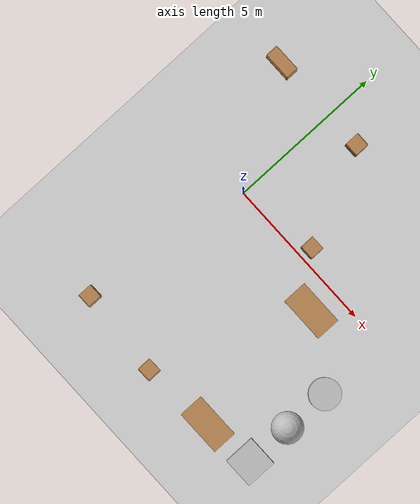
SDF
<sdf version="1.7">
 <world name="default">
  <model name="ground_plane">
   <static>1</static>
   <link name="link">
    <collision name="collision">
     <geometry><plane><normal>0 0 1</normal><size>100 100</size></plane></geometry>
     <surface>
      <contact><collide_bitmask>65535</collide_bitmask></contact>
      <friction><ode><mu>100</mu><mu2>50</mu2></ode></friction>
     </surface>
    </collision>
    <visual name="visual">
     <cast_shadows>0</cast_shadows>
     <geometry><plane><normal>0 0 1</normal><size>100 100</size></plane></geometry>
     <material>
      <script><uri>file://media/materials/scripts/gazebo.material</uri><name>Gazebo/Grey</name></script>
     </material>
    </visual>
   </link>
  </model>
  <model name="table">
   <static>1</static>
   <link name="link">
    <collision name="surface">
     <pose>0 0 1 0 -0 0</pose>
     <geometry><box><size>1.5 0.8 0.03</size></box></geometry>
     <surface><friction><ode><mu>0.6</mu><mu2>0.6</mu2></ode></friction></surface>
    </collision>
    <visual name="visual1">
     <pose>0 0 1 0 -0 0</pose>
     <geometry><box><size>1.5 0.8 0.03</size></box></geometry>
     <material>
      <script><uri>file://media/materials/scripts/gazebo.material</uri><name>Gazebo/Wood</name></script>
     </material>
    </visual>
    <collision name="front_left_leg">
     <pose>0.68 0.38 0.5 0 -0 0</pose>
     <geometry><cylinder><radius>0.02</radius><length>1</length></cylinder></geometry>
    </collision>
    <visual name="front_left_leg">
     <pose>0.68 0.38 0.5 0 -0 0</pose>
     <geometry><cylinder><radius>0.02</radius><length>1</length></cylinder></geometry>
     <material>
      <script><uri>file://media/materials/scripts/gazebo.material</uri><name>Gazebo/Grey</name></script>
     </material>
    </visual>
    <collision name="front_right_leg">
     <pose>0.68 -0.38 0.5 0 -0 0</pose>
     <geometry><cylinder><radius>0.02</radius><length>1</length></cylinder></geometry>
    </collision>
    <visual name="front_right_leg">
     <pose>0.68 -0.38 0.5 0 -0 0</pose>
     <geometry><cylinder><radius>0.02</radius><length>1</length></cylinder></geometry>
     <material>
      <script><uri>file://media/materials/scripts/gazebo.material</uri><name>Gazebo/Grey</name></script>
     </material>
    </visual>
    <collision name="back_right_leg">
     <pose>-0.68 -0.38 0.5 0 -0 0</pose>
     <geometry><cylinder><radius>0.02</radius><length>1</length></cylinder></geometry>
    </collision>
    <visual name="back_right_leg">
     <pose>-0.68 -0.38 0.5 0 -0 0</pose>
     <geometry><cylinder><radius>0.02</radius><length>1</length></cylinder></geometry>
     <material>
      <script><uri>file://media/materials/scripts/gazebo.material</uri><name>Gazebo/Grey</name></script>
     </material>
    </visual>
    <collision name="back_left_leg">
     <pose>-0.68 0.38 0.5 0 -0 0</pose>
     <geometry><cylinder><radius>0.02</radius><length>1</length></cylinder></geometry>
    </collision>
    <visual name="back_left_leg">
     <pose>-0.68 0.38 0.5 0 -0 0</pose>
     <geometry><cylinder><radius>0.02</radius><length>1</length></cylinder></geometry>
     <material>
      <script><uri>file://media/materials/scripts/gazebo.material</uri><name>Gazebo/Grey</name></script>
     </material>
    </visual>
   </link>
   <pose>3.97524 -0.880736 0 0 -0 0</pose>
  </model>
  <model name="bookshelf">
   <static>1</static>
   <link name="link">
    <inertial><mass>1</mass></inertial>
    <collision name="back">
     <pose>0 0.005 0.6 0 -0 0</pose>
     <geometry><box><size>0.9 0.01 1.2</size></box></geometry>
    </collision>
    <visual name="visual1">
     <pose>0 0.005 0.6 0 -0 0</pose>
     <geometry><box><size>0.9 0.01 1.2</size></box></geometry>
     <material>
      <script><uri>file://media/materials/scripts/gazebo.material</uri><name>Gazebo/Wood</name></script>
     </material>
    </visual>
    <collision name="left_side">
     <pose>0.45 -0.195 0.6 0 -0 0</pose>
     <geometry><box><size>0.02 0.4 1.2</size></box></geometry>
    </collision>
    <visual name="visual2">
     <pose>0.45 -0.195 0.6 0 -0 0</pose>
     <geometry><box><size>0.02 0.4 1.2</size></box></geometry>
     <material>
      <script><uri>file://media/materials/scripts/gazebo.material</uri><name>Gazebo/Wood</name></script>
     </material>
    </visual>
    <collision name="right_side">
     <pose>-0.45 -0.195 0.6 0 -0 0</pose>
     <geometry><box><size>0.02 0.4 1.2</size></box></geometry>
    </collision>
    <visual name="visual3">
     <pose>-0.45 -0.195 0.6 0 -0 0</pose>
     <geometry><box><size>0.02 0.4 1.2</size></box></geometry>
     <material>
      <script><uri>file://media/materials/scripts/gazebo.material</uri><name>Gazebo/Wood</name></script>
     </material>
    </visual>
    <collision name="bottom">
     <pose>0 -0.195 0.03 0 -0 0</pose>
     <geometry><box><size>0.88 0.4 0.06</size></box></geometry>
    </collision>
    <visual name="visual4">
     <pose>0 -0.195 0.03 0 -0 0</pose>
     <geometry><box><size>0.88 0.4 0.06</size></box></geometry>
     <material>
      <script><uri>file://media/materials/scripts/gazebo.material</uri><name>Gazebo/Wood</name></script>
     </material>
    </visual>
    <collision name="top">
     <pose>0 -0.195 1.19 0 -0 0</pose>
     <geometry><box><size>0.88 0.4 0.02</size></box></geometry>
    </collision>
    <visual name="visual5">
     <pose>0 -0.195 1.19 0 -0 0</pose>
     <geometry><box><size>0.88 0.4 0.02</size></box></geometry>
     <material>
      <script><uri>file://media/materials/scripts/gazebo.material</uri><name>Gazebo/Wood</name></script>
     </material>
    </visual>
    <collision name="low_shelf">
     <pose>0 -0.195 0.43 0 -0 0</pose>
     <geometry><box><size>0.88 0.4 0.02</size></box></geometry>
    </collision>
    <visual name="visual6">
     <pose>0 -0.195 0.43 0 -0 0</pose>
     <geometry><box><size>0.88 0.4 0.02</size></box></geometry>
     <material>
      <script><uri>file://media/materials/scripts/gazebo.material</uri><name>Gazebo/Wood</name></script>
     </material>
    </visual>
    <collision name="high_shelf">
     <pose>0 -0.195 0.8 0 -0 0</pose>
     <geometry><box><size>0.88 0.4 0.02</size></box></geometry>
    </collision>
    <visual name="visual7">
     <pose>0 -0.195 0.8 0 -0 0</pose>
     <geometry><box><size>0.88 0.4 0.02</size></box></geometry>
     <material>
      <script><uri>file://media/materials/scripts/gazebo.material</uri><name>Gazebo/Wood</name></script>
     </material>
    </visual>
   </link>
   <pose>-2.08453 3.64023 0 0 -0 0</pose>
  </model>
  <model name="table_0">
   <static>1</static>
   <link name="link">
    <collision name="surface">
     <pose>0 0 1 0 -0 0</pose>
     <geometry><box><size>1.5 0.8 0.03</size></box></geometry>
     <surface><friction><ode><mu>0.6</mu><mu2>0.6</mu2></ode></friction></surface>
    </collision>
    <visual name="visual1">
     <pose>0 0 1 0 -0 0</pose>
     <geometry><box><size>1.5 0.8 0.03</size></box></geometry>
     <material>
      <script><uri>file://media/materials/scripts/gazebo.material</uri><name>Gazebo/Wood</name></script>
     </material>
    </visual>
    <collision name="front_left_leg">
     <pose>0.68 0.38 0.5 0 -0 0</pose>
     <geometry><cylinder><radius>0.02</radius><length>1</length></cylinder></geometry>
    </collision>
    <visual name="front_left_leg">
     <pose>0.68 0.38 0.5 0 -0 0</pose>
     <geometry><cylinder><radius>0.02</radius><length>1</length></cylinder></geometry>
     <material>
      <script><uri>file://media/materials/scripts/gazebo.material</uri><name>Gazebo/Grey</name></script>
     </material>
    </visual>
    <collision name="front_right_leg">
     <pose>0.68 -0.38 0.5 0 -0 0</pose>
     <geometry><cylinder><radius>0.02</radius><length>1</length></cylinder></geometry>
    </collision>
    <visual name="front_right_leg">
     <pose>0.68 -0.38 0.5 0 -0 0</pose>
     <geometry><cylinder><radius>0.02</radius><length>1</length></cylinder></geometry>
     <material>
      <script><uri>file://media/materials/scripts/gazebo.material</uri><name>Gazebo/Grey</name></script>
     </material>
    </visual>
    <collision name="back_right_leg">
     <pose>-0.68 -0.38 0.5 0 -0 0</pose>
     <geometry><cylinder><radius>0.02</radius><length>1</length></cylinder></geometry>
    </collision>
    <visual name="back_right_leg">
     <pose>-0.68 -0.38 0.5 0 -0 0</pose>
     <geometry><cylinder><radius>0.02</radius><length>1</length></cylinder></geometry>
     <material>
      <script><uri>file://media/materials/scripts/gazebo.material</uri><name>Gazebo/Grey</name></script>
     </material>
    </visual>
    <collision name="back_left_leg">
     <pose>-0.68 0.38 0.5 0 -0 0</pose>
     <geometry><cylinder><radius>0.02</radius><length>1</length></cylinder></geometry>
    </collision>
    <visual name="back_left_leg">
     <pose>-0.68 0.38 0.5 0 -0 0</pose>
     <geometry><cylinder><radius>0.02</radius><length>1</length></cylinder></geometry>
     <material>
      <script><uri>file://media/materials/scripts/gazebo.material</uri><name>Gazebo/Grey</name></script>
     </material>
    </visual>
   </link>
   <pose>4.39643 -5.41437 0 0 -0 0</pose>
  </model>
  <model name="cabinet">
   <static>1</static>
   <link name="cabinet_bottom_plate">
    <inertial>
     <pose>0 0 -1 0 -0 0</pose>
     <inertia><ixx>2.05</ixx><ixy>0</ixy><ixz>0</ixz><iyy>2.05</iyy><iyz>0</iyz><izz>2.05</izz></inertia>
     <mass>25</mass>
    </inertial>
    <collision name="cabinet_bottom_plate_geom">
     <pose>0 0 0.01 0 -0 0</pose>
     <geometry><box><size>0.45 0.45 0.02</size></box></geometry>
    </collision>
    <visual name="cabinet_bottom_plate_geom_visual">
     <pose>0 0 0.01 0 -0 0</pose>
     <geometry><box><size>0.45 0.45 0.02</size></box></geometry>
     <material>
      <script><uri>file://media/materials/scripts/gazebo.material</uri><name>Gazebo/Wood</name></script>
     </material>
    </visual>
    <collision name="cabinet_bottom_plate_geom_cabinet_back_plate">
     <pose>0.235 0 0.51 0 -0 0</pose>
     <geometry><box><size>0.02 0.45 1.02</size></box></geometry>
    </collision>
    <visual name="cabinet_bottom_plate_geom_cabinet_back_plate_visual">
     <pose>0.235 0 0.51 0 -0 0</pose>
     <geometry><box><size>0.02 0.45 1.02</size></box></geometry>
     <material>
      <script><uri>file://media/materials/scripts/gazebo.material</uri><name>Gazebo/Wood</name></script>
     </material>
    </visual>
    <collision name="cabinet_bottom_plate_geom_cabinet_left_plate">
     <pose>0 0.235 0.51 0 -0 0</pose>
     <geometry><box><size>0.45 0.02 1.02</size></box></geometry>
    </collision>
    <visual name="cabinet_bottom_plate_geom_cabinet_left_plate_visual">
     <pose>0 0.235 0.51 0 -0 0</pose>
     <geometry><box><size>0.45 0.02 1.02</size></box></geometry>
     <material>
      <script><uri>file://media/materials/scripts/gazebo.material</uri><name>Gazebo/Wood</name></script>
     </material>
    </visual>
    <collision name="cabinet_bottom_plate_geom_cabinet_middle_plate">
     <pose>0 0 0.51 0 -0 0</pose>
     <geometry><box><size>0.45 0.45 0.02</size></box></geometry>
    </collision>
    <visual name="cabinet_bottom_plate_geom_cabinet_middle_plate_visual">
     <pose>0 0 0.51 0 -0 0</pose>
     <geometry><box><size>0.45 0.45 0.02</size></box></geometry>
     <material>
      <script><uri>file://media/materials/scripts/gazebo.material</uri><name>Gazebo/Wood</name></script>
     </material>
    </visual>
    <collision name="cabinet_bottom_plate_geom_cabinet_right_plate">
     <pose>0 -0.235 0.51 0 -0 0</pose>
     <geometry><box><size>0.45 0.02 1.02</size></box></geometry>
    </collision>
    <visual name="cabinet_bottom_plate_geom_cabinet_right_plate_visual">
     <pose>0 -0.235 0.51 0 -0 0</pose>
     <geometry><box><size>0.45 0.02 1.02</size></box></geometry>
     <material>
      <script><uri>file://media/materials/scripts/gazebo.material</uri><name>Gazebo/Wood</name></script>
     </material>
    </visual>
    <collision name="cabinet_bottom_plate_geom_cabinet_top_plate">
     <pose>0 0 1.01 0 -0 0</pose>
     <geometry><box><size>0.45 0.45 0.02</size></box></geometry>
    </collision>
    <visual name="cabinet_bottom_plate_geom_cabinet_top_plate_visual">
     <pose>0 0 1.01 0 -0 0</pose>
     <geometry><box><size>0.45 0.45 0.02</size></box></geometry>
     <material>
      <script><uri>file://media/materials/scripts/gazebo.material</uri><name>Gazebo/Wood</name></script>
     </material>
    </visual>
   </link>
   <pose>-0.788023 -5.44719 0 0 -0 0</pose>
  </model>
  <model name="cabinet_clone">
   <static>1</static>
   <link name="cabinet_bottom_plate">
    <inertial>
     <pose>0 0 -1 0 -0 0</pose>
     <inertia><ixx>2.05</ixx><ixy>0</ixy><ixz>0</ixz><iyy>2.05</iyy><iyz>0</iyz><izz>2.05</izz></inertia>
     <mass>25</mass>
    </inertial>
    <collision name="cabinet_bottom_plate_geom">
     <pose>0 0 0.01 0 -0 0</pose>
     <geometry><box><size>0.45 0.45 0.02</size></box></geometry>
    </collision>
    <visual name="cabinet_bottom_plate_geom_visual">
     <pose>0 0 0.01 0 -0 0</pose>
     <geometry><box><size>0.45 0.45 0.02</size></box></geometry>
     <material>
      <script><uri>file://media/materials/scripts/gazebo.material</uri><name>Gazebo/Wood</name></script>
     </material>
    </visual>
    <collision name="cabinet_bottom_plate_geom_cabinet_back_plate">
     <pose>0.235 0 0.51 0 -0 0</pose>
     <geometry><box><size>0.02 0.45 1.02</size></box></geometry>
    </collision>
    <visual name="cabinet_bottom_plate_geom_cabinet_back_plate_visual">
     <pose>0.235 0 0.51 0 -0 0</pose>
     <geometry><box><size>0.02 0.45 1.02</size></box></geometry>
     <material>
      <script><uri>file://media/materials/scripts/gazebo.material</uri><name>Gazebo/Wood</name></script>
     </material>
    </visual>
    <collision name="cabinet_bottom_plate_geom_cabinet_left_plate">
     <pose>0 0.235 0.51 0 -0 0</pose>
     <geometry><box><size>0.45 0.02 1.02</size></box></geometry>
    </collision>
    <visual name="cabinet_bottom_plate_geom_cabinet_left_plate_visual">
     <pose>0 0.235 0.51 0 -0 0</pose>
     <geometry><box><size>0.45 0.02 1.02</size></box></geometry>
     <material>
      <script><uri>file://media/materials/scripts/gazebo.material</uri><name>Gazebo/Wood</name></script>
     </material>
    </visual>
    <collision name="cabinet_bottom_plate_geom_cabinet_middle_plate">
     <pose>0 0 0.51 0 -0 0</pose>
     <geometry><box><size>0.45 0.45 0.02</size></box></geometry>
    </collision>
    <visual name="cabinet_bottom_plate_geom_cabinet_middle_plate_visual">
     <pose>0 0 0.51 0 -0 0</pose>
     <geometry><box><size>0.45 0.45 0.02</size></box></geometry>
     <material>
      <script><uri>file://media/materials/scripts/gazebo.material</uri><name>Gazebo/Wood</name></script>
     </material>
    </visual>
    <collision name="cabinet_bottom_plate_geom_cabinet_right_plate">
     <pose>0 -0.235 0.51 0 -0 0</pose>
     <geometry><box><size>0.45 0.02 1.02</size></box></geometry>
    </collision>
    <visual name="cabinet_bottom_plate_geom_cabinet_right_plate_visual">
     <pose>0 -0.235 0.51 0 -0 0</pose>
     <geometry><box><size>0.45 0.02 1.02</size></box></geometry>
     <material>
      <script><uri>file://media/materials/scripts/gazebo.material</uri><name>Gazebo/Wood</name></script>
     </material>
    </visual>
    <collision name="cabinet_bottom_plate_geom_cabinet_top_plate">
     <pose>0 0 1.01 0 -0 0</pose>
     <geometry><box><size>0.45 0.45 0.02</size></box></geometry>
    </collision>
    <visual name="cabinet_bottom_plate_geom_cabinet_top_plate_visual">
     <pose>0 0 1.01 0 -0 0</pose>
     <geometry><box><size>0.45 0.45 0.02</size></box></geometry>
     <material>
      <script><uri>file://media/materials/scripts/gazebo.material</uri><name>Gazebo/Wood</name></script>
     </material>
    </visual>
   </link>
   <pose>2.60244 0.408301 0 0 0 -1.57037</pose>
  </model>
  <model name="cabinet_clone_1">
   <static>1</static>
   <link name="cabinet_bottom_plate">
    <inertial>
     <pose>0 0 -1 0 -0 0</pose>
     <inertia><ixx>2.05</ixx><ixy>0</ixy><ixz>0</ixz><iyy>2.05</iyy><iyz>0</iyz><izz>2.05</izz></inertia>
     <mass>25</mass>
    </inertial>
    <collision name="cabinet_bottom_plate_geom">
     <pose>0 0 0.01 0 -0 0</pose>
     <geometry><box><size>0.45 0.45 0.02</size></box></geometry>
    </collision>
    <visual name="cabinet_bottom_plate_geom_visual">
     <pose>0 0 0.01 0 -0 0</pose>
     <geometry><box><size>0.45 0.45 0.02</size></box></geometry>
     <material>
      <script><uri>file://media/materials/scripts/gazebo.material</uri><name>Gazebo/Wood</name></script>
     </material>
    </visual>
    <collision name="cabinet_bottom_plate_geom_cabinet_back_plate">
     <pose>0.235 0 0.51 0 -0 0</pose>
     <geometry><box><size>0.02 0.45 1.02</size></box></geometry>
    </collision>
    <visual name="cabinet_bottom_plate_geom_cabinet_back_plate_visual">
     <pose>0.235 0 0.51 0 -0 0</pose>
     <geometry><box><size>0.02 0.45 1.02</size></box></geometry>
     <material>
      <script><uri>file://media/materials/scripts/gazebo.material</uri><name>Gazebo/Wood</name></script>
     </material>
    </visual>
    <collision name="cabinet_bottom_plate_geom_cabinet_left_plate">
     <pose>0 0.235 0.51 0 -0 0</pose>
     <geometry><box><size>0.45 0.02 1.02</size></box></geometry>
    </collision>
    <visual name="cabinet_bottom_plate_geom_cabinet_left_plate_visual">
     <pose>0 0.235 0.51 0 -0 0</pose>
     <geometry><box><size>0.45 0.02 1.02</size></box></geometry>
     <material>
      <script><uri>file://media/materials/scripts/gazebo.material</uri><name>Gazebo/Wood</name></script>
     </material>
    </visual>
    <collision name="cabinet_bottom_plate_geom_cabinet_middle_plate">
     <pose>0 0 0.51 0 -0 0</pose>
     <geometry><box><size>0.45 0.45 0.02</size></box></geometry>
    </collision>
    <visual name="cabinet_bottom_plate_geom_cabinet_middle_plate_visual">
     <pose>0 0 0.51 0 -0 0</pose>
     <geometry><box><size>0.45 0.45 0.02</size></box></geometry>
     <material>
      <script><uri>file://media/materials/scripts/gazebo.material</uri><name>Gazebo/Wood</name></script>
     </material>
    </visual>
    <collision name="cabinet_bottom_plate_geom_cabinet_right_plate">
     <pose>0 -0.235 0.51 0 -0 0</pose>
     <geometry><box><size>0.45 0.02 1.02</size></box></geometry>
    </collision>
    <visual name="cabinet_bottom_plate_geom_cabinet_right_plate_visual">
     <pose>0 -0.235 0.51 0 -0 0</pose>
     <geometry><box><size>0.45 0.02 1.02</size></box></geometry>
     <material>
      <script><uri>file://media/materials/scripts/gazebo.material</uri><name>Gazebo/Wood</name></script>
     </material>
    </visual>
    <collision name="cabinet_bottom_plate_geom_cabinet_top_plate">
     <pose>0 0 1.01 0 -0 0</pose>
     <geometry><box><size>0.45 0.45 0.02</size></box></geometry>
    </collision>
    <visual name="cabinet_bottom_plate_geom_cabinet_top_plate_visual">
     <pose>0 0 1.01 0 -0 0</pose>
     <geometry><box><size>0.45 0.45 0.02</size></box></geometry>
     <material>
      <script><uri>file://media/materials/scripts/gazebo.material</uri><name>Gazebo/Wood</name></script>
     </material>
    </visual>
   </link>
   <pose>1.21702 3.45252 0 0 -0 0</pose>
  </model>
  <model name="textured_shapes">
   <pose>6.07964 -3.73784 0.5 0 -0 0</pose>
   <link name="box">
    <pose>0 -1.5 0 0 -0 0</pose>
    <collision name="collision"><geometry><box><size>1 1 1</size></box></geometry></collision>
    <visual name="visual">
     <geometry><box><size>1 1 1</size></box></geometry>
     <material>
      <script>
       <uri>model://textured_shapes/materials/scripts</uri>
       <uri>model://textured_shapes/materials/textures</uri>
       <name>TexturedShape/Squares</name>
      </script>
     </material>
    </visual>
    <inertial>
     <inertia><ixx>1</ixx><ixy>0</ixy><ixz>0</ixz><iyy>1</iyy><iyz>0</iyz><izz>1</izz></inertia>
     <mass>1</mass>
    </inertial>
   </link>
   <link name="sphere">
    <collision name="collision"><geometry><sphere><radius>0.5</radius></sphere></geometry></collision>
    <visual name="visual">
     <geometry><sphere><radius>0.5</radius></sphere></geometry>
     <material>
      <script>
       <uri>model://textured_shapes/materials/scripts</uri>
       <uri>model://textured_shapes/materials/textures</uri>
       <name>TexturedShape/Squares</name>
      </script>
     </material>
    </visual>
    <inertial>
     <inertia><ixx>1</ixx><ixy>0</ixy><ixz>0</ixz><iyy>1</iyy><iyz>0</iyz><izz>1</izz></inertia>
     <mass>1</mass>
    </inertial>
   </link>
   <link name="cylinder">
    <pose>0 1.5 0 0 -0 0</pose>
    <collision name="collision">
     <geometry><cylinder><radius>0.5</radius><length>1</length></cylinder></geometry>
    </collision>
    <visual name="visual">
     <geometry><cylinder><radius>0.5</radius><length>1</length></cylinder></geometry>
     <material>
      <script>
       <uri>model://textured_shapes/materials/scripts</uri>
       <uri>model://textured_shapes/materials/textures</uri>
       <name>TexturedShape/Squares</name>
      </script>
     </material>
    </visual>
    <inertial>
     <inertia><ixx>1</ixx><ixy>0</ixy><ixz>0</ixz><iyy>1</iyy><iyz>0</iyz><izz>1</izz></inertia>
     <mass>1</mass>
    </inertial>
   </link>
  </model>
  <model name="cabinet_0">
   <static>1</static>
   <link name="cabinet_bottom_plate">
    <inertial>
     <pose>0 0 -1 0 -0 0</pose>
     <inertia><ixx>2.05</ixx><ixy>0</ixy><ixz>0</ixz><iyy>2.05</iyy><iyz>0</iyz><izz>2.05</izz></inertia>
     <mass>25</mass>
    </inertial>
    <collision name="cabinet_bottom_plate_geom">
     <pose>0 0 0.01 0 -0 0</pose>
     <geometry><box><size>0.45 0.45 0.02</size></box></geometry>
    </collision>
    <visual name="cabinet_bottom_plate_geom_visual">
     <pose>0 0 0.01 0 -0 0</pose>
     <geometry><box><size>0.45 0.45 0.02</size></box></geometry>
     <material>
      <script><uri>file://media/materials/scripts/gazebo.material</uri><name>Gazebo/Wood</name></script>
     </material>
    </visual>
    <collision name="cabinet_bottom_plate_geom_cabinet_back_plate">
     <pose>0.235 0 0.51 0 -0 0</pose>
     <geometry><box><size>0.02 0.45 1.02</size></box></geometry>
    </collision>
    <visual name="cabinet_bottom_plate_geom_cabinet_back_plate_visual">
     <pose>0.235 0 0.51 0 -0 0</pose>
     <geometry><box><size>0.02 0.45 1.02</size></box></geometry>
     <material>
      <script><uri>file://media/materials/scripts/gazebo.material</uri><name>Gazebo/Wood</name></script>
     </material>
    </visual>
    <collision name="cabinet_bottom_plate_geom_cabinet_left_plate">
     <pose>0 0.235 0.51 0 -0 0</pose>
     <geometry><box><size>0.45 0.02 1.02</size></box></geometry>
    </collision>
    <visual name="cabinet_bottom_plate_geom_cabinet_left_plate_visual">
     <pose>0 0.235 0.51 0 -0 0</pose>
     <geometry><box><size>0.45 0.02 1.02</size></box></geometry>
     <material>
      <script><uri>file://media/materials/scripts/gazebo.material</uri><name>Gazebo/Wood</name></script>
     </material>
    </visual>
    <collision name="cabinet_bottom_plate_geom_cabinet_middle_plate">
     <pose>0 0 0.51 0 -0 0</pose>
     <geometry><box><size>0.45 0.45 0.02</size></box></geometry>
    </collision>
    <visual name="cabinet_bottom_plate_geom_cabinet_middle_plate_visual">
     <pose>0 0 0.51 0 -0 0</pose>
     <geometry><box><size>0.45 0.45 0.02</size></box></geometry>
     <material>
      <script><uri>file://media/materials/scripts/gazebo.material</uri><name>Gazebo/Wood</name></script>
     </material>
    </visual>
    <collision name="cabinet_bottom_plate_geom_cabinet_right_plate">
     <pose>0 -0.235 0.51 0 -0 0</pose>
     <geometry><box><size>0.45 0.02 1.02</size></box></geometry>
    </collision>
    <visual name="cabinet_bottom_plate_geom_cabinet_right_plate_visual">
     <pose>0 -0.235 0.51 0 -0 0</pose>
     <geometry><box><size>0.45 0.02 1.02</size></box></geometry>
     <material>
      <script><uri>file://media/materials/scripts/gazebo.material</uri><name>Gazebo/Wood</name></script>
     </material>
    </visual>
    <collision name="cabinet_bottom_plate_geom_cabinet_top_plate">
     <pose>0 0 1.01 0 -0 0</pose>
     <geometry><box><size>0.45 0.45 0.02</size></box></geometry>
    </collision>
    <visual name="cabinet_bottom_plate_geom_cabinet_top_plate_visual">
     <pose>0 0 1.01 0 -0 0</pose>
     <geometry><box><size>0.45 0.45 0.02</size></box></geometry>
     <material>
      <script><uri>file://media/materials/scripts/gazebo.material</uri><name>Gazebo/Wood</name></script>
     </material>
    </visual>
   </link>
   <pose>2.036 -5.62459 0.067852 0.003169 -0.013859 -1.54882</pose>
  </model>
 </world>
</sdf>
